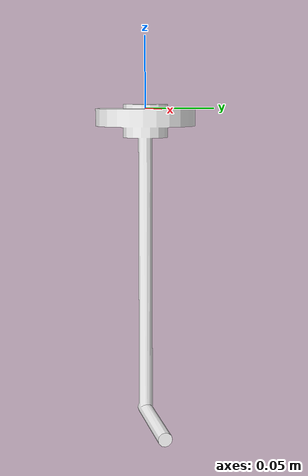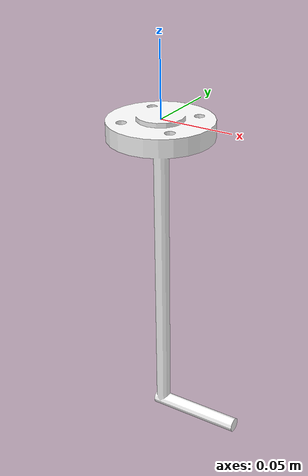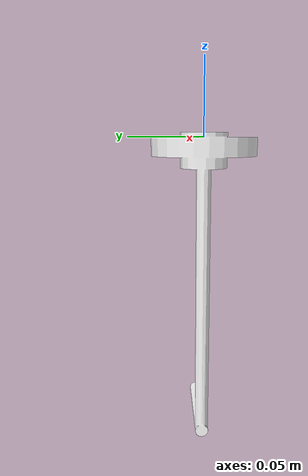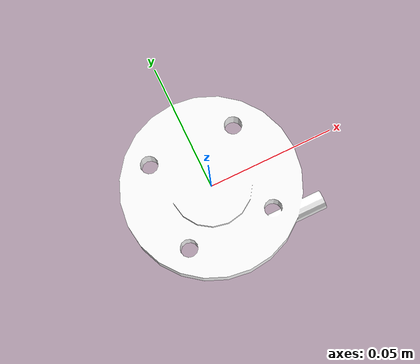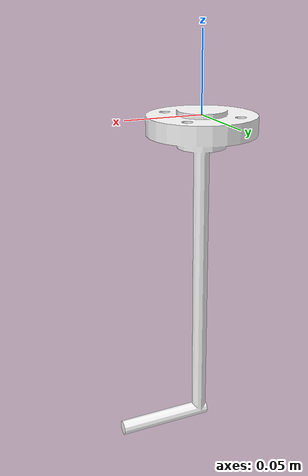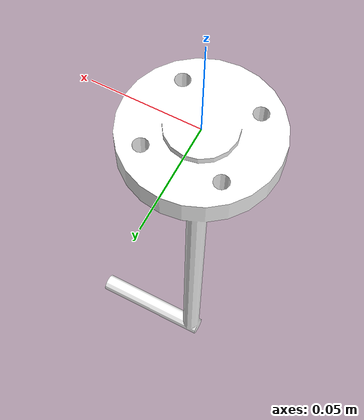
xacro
<?xml version="1.0" encoding="utf-8"?>
<robot
  name="end_effector">
  <link
    name="end_effector">
    <inertial>
      <origin
        xyz="0.0019138 -2.07980000002752E-07 -0.044942"
        rpy="0 0 0" />
      <mass
        value="0.073389" />
      <inertia
        ixx="0.00037971"
        ixy="2.71939999998495E-10"
        ixz="2.4585E-05"
        iyy="0.00038507"
        iyz="2.18039999997849E-09"
        izz="3.3799E-05" />
    </inertial>
    <visual>
      <origin
        xyz="0 0 0"
        rpy="1.5707963267949 0 0" />
      <geometry>
        <mesh
          filename="$(find ur_e_description)/meshes/ur5e/collision/end_effector.stl"/>
      </geometry>
      <material
        name="">
        <color
          rgba="1 1 1 1" />
        <!---texture
          filename="package://末端执行器/textures/" /-->
      </material>
    </visual>
    <collision>
      <origin
        xyz="0 0 0"
        rpy="1.5707963267949 0 0" />
      <geometry>
        <mesh
          filename="$(find ur_e_description)/meshes/ur5e/collision/end_effector.stl"/>
      </geometry>
    </collision>
  </link>
</robot>
